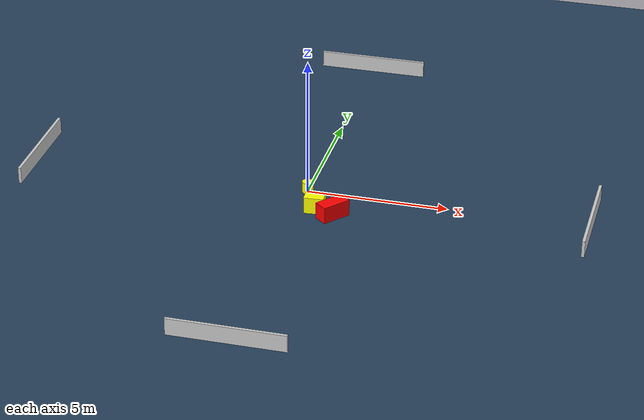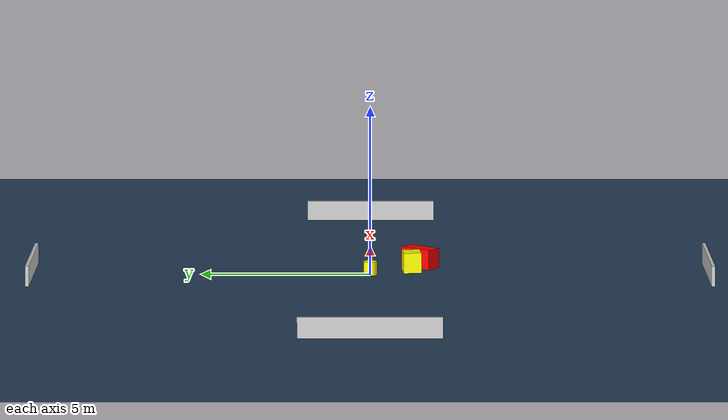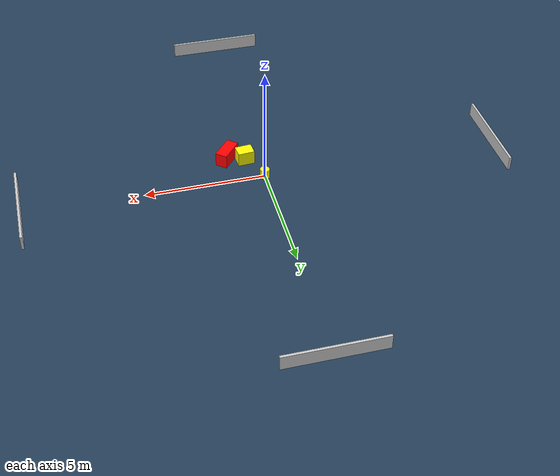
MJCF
<?xml version="1.0" ?>
<mujoco model="generated_environment">
  <option timestep="0.01" integrator="RK4" cone="elliptic"/>
  <default>
    <geom density="1"/>
  </default>
  <asset>
    <texture builtin="gradient" height="3072" name="skybox" rgb1="0.3 0.5 0.7" rgb2="0 0 0" type="skybox" width="512"/>
    <texture builtin="checker" height="300" name="groundplane" rgb1="0.2 0.3 0.4" rgb2="0.1 0.2 0.3" type="2d" width="300"/>
    <material name="groundplane" reflectance="0.2" texrepeat="5 5" texture="groundplane"/>
  </asset>
  <worldbody>
    <light dir="0 0 -1" directional="true" pos="0 0 1.5"/>
    <geom condim="3" friction="0.5 0.005 0.001" material="groundplane" name="floor" pos="0 0 0" size="0 0 0.05" type="plane"/>
    <body name="walls">
      <geom name="wall_1" condim="4" pos="-10.0 0.0 0.3" rgba="0.800000011920929 0.800000011920929 0.800000011920929 1.0" size="0.05 2.0 0.3" type="box"/>
      <geom name="wall_2" condim="4" pos="10.0 0.0 0.3" rgba="0.800000011920929 0.800000011920929 0.800000011920929 1.0" size="0.05 2.0 0.3" type="box"/>
      <geom name="wall_3" condim="4" pos="0.0 -10.0 0.3" rgba="0.800000011920929 0.800000011920929 0.800000011920929 1.0" size="2.0 0.05 0.3" type="box"/>
      <geom name="wall_4" condim="4" pos="0.0 10.0 0.3" rgba="0.800000011920929 0.800000011920929 0.800000011920929 1.0" size="2.0 0.05 0.3" type="box"/>
    </body>
    <body name="robot">
      <joint name="joint_x" type="slide" pos="0 0 0" axis="1 0 0"/>
      <joint name="joint_y" type="slide" pos="0 0 0" axis="0 1 0"/>
      <geom name="robot" type="cylinder" pos="0.0 0.0 0.2" size="0.2 0.2 0.0" mass="5.0" friction="1.0 0.005 0.0001" condim="4" rgba="1.0 1.0 0.0 1.0"/>
    </body>
    <body name="obstacle_1_movable">
      <geom name="obstacle_1_movable" condim="4" pos="0.5684179304016919 -1.2266814583517254 0.3" euler="0 0 94.37016268471388" friction="0.0 0.005 0.001" rgba="1.0 1.0 0.0 1.0" size="0.26335774199420403 0.3455271090015594 0.3" type="box" mass="0.1"/>
      <joint type="free"/>
    </body>
    <body name="obstacle_2_static">
      <geom name="obstacle_2_static" condim="4" pos="1.2739420403486503 -1.4886633195993406 0.3" euler="0 0 139.94908086220875" friction="0.0 0.005 0.001" rgba="1.0 0.0 0.0 1.0" size="0.25292900988721967 0.5270525916590278 0.3" type="box"/>
    </body>
  </worldbody>
  <actuator>
    <motor name="actuator_x" joint="joint_x" gear="1" ctrlrange="-1 1"/>
    <motor name="actuator_y" joint="joint_y" gear="1" ctrlrange="-1 1"/>
  </actuator>
</mujoco>
